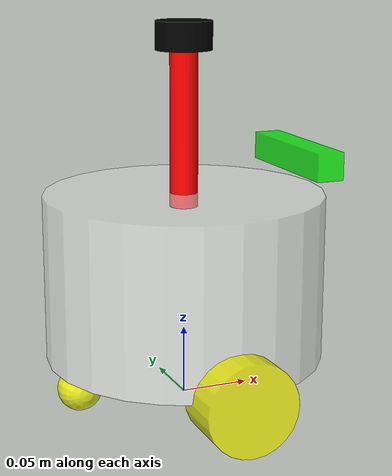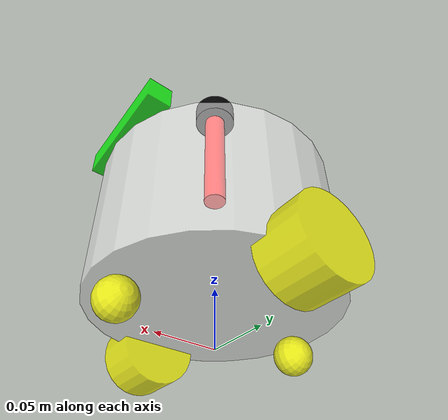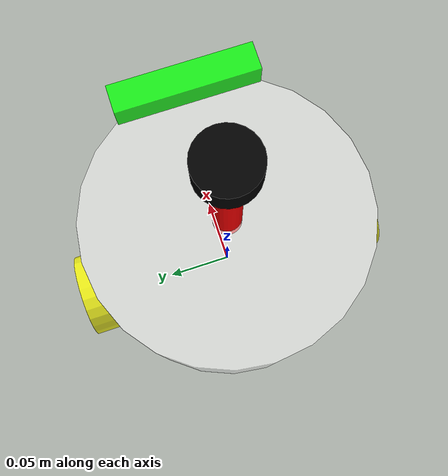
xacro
<?xml version="1.0"?>
<robot xmlns:xacro="http://www.ros.org/wiki/xacro" name="fishbot">
<xacro:include filename="$(find fishbot_description)/urdf/fishbot/base.urdf.xacro" />
<!--传感器部分-->
<xacro:include filename="$(find fishbot_description)/urdf/fishbot/sensor/camera.urdf.xacro" />
<xacro:include filename="$(find fishbot_description)/urdf/fishbot/sensor/imu.urdf.xacro" />
<xacro:include filename="$(find fishbot_description)/urdf/fishbot/sensor/laser.urdf.xacro" />

<!--执行器部分-->
<xacro:include filename="$(find fishbot_description)/urdf/fishbot/actuator/wheel.urdf.xacro" />
<xacro:include filename="$(find fishbot_description)/urdf/fishbot/actuator/caster.urdf.xacro" />

<!--插件-->
<xacro:include filename="$(find fishbot_description)/urdf/fishbot/plugins/gazebo_control_plugin.xacro" />
<xacro:include filename="$(find fishbot_description)/urdf/fishbot/plugins/gazebo_sensor_plugin.xacro" />
<xacro:include filename="$(find fishbot_description)/urdf/fishbot/fishbot.ros2_control.xacro" />

<xacro:base_xacro length="0.12" radius="0.1" />
<xacro:imu_xacro xyz="0 0 0.02" />       <!-- IMU 在中心顶部 -->
<xacro:camera_xacro xyz="0.09 0 0.08" /> <!-- 相机在前部 -->
<xacro:laser_xacro xyz="0 0 0.11" />

<xacro:wheel_xacro wheel_name="left_wheel" xyz="0 0.1 -0.06" />
<xacro:wheel_xacro wheel_name="right_wheel" xyz="0 -0.1 -0.06" />

<xacro:caster_xacro caster_name="front_caster" xyz="0.08 0.0 -0.076" />
<xacro:caster_xacro caster_name="back_caster" xyz="-0.08 0.0 -0.076" />

<!--xacro:gazebo_control_plugin/-->
<xacro:gazebo_sensor_plugin/>
<xacro:fishbot_ros2_control/>
</robot>

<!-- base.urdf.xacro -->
<robot xmlns:xacro="http://www.ros.org/wiki/xacro" name="fishbot">
    <xacro:include filename="$(find fishbot_description)/urdf/fishbot/common_inertial.xacro" />
    <xacro:macro name="base_xacro" params="length radius">
        <link name="base_footprint" />
        <!--机器人身体部分-->
        <link name="base_link">
            <!--部件外观描述-->
            <visual>
                <!-- 沿自己几何中心的旋转量与偏移量-->
                <origin rpy="0 0 0" xyz="0 0 0"/>
                <!-- 描述部件外观的几何体-->
                <geometry>
                    <!-- 圆柱-->
                    <cylinder length="${length}" radius="${radius}" />
                </geometry>
                <material name="white">
                    <color rgba="1 1 1 0.5"/>
                </material>
            </visual>
            <collision>
                <origin rpy="0 0 0" xyz="0 0 0"/>
                <geometry>
                    <cylinder length="${length}" radius="${radius}" />
                </geometry>
                <material name="white">
                    <color rgba="1 1 1 0.5"/>
                </material>
            </collision>
            <xacro:cylinder_inertia m="1.0" r="${radius}" h="${length}" />
        </link>
        <joint name="base_joint" type="fixed">
            <parent link="base_footprint" />
            <child link="base_link" />
            <origin rpy="0 0 0" xyz="0 0 ${length/2.0+0.032-0.001}" />
        </joint>
    </xacro:macro>
</robot>

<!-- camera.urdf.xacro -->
<robot xmlns:xacro="http://www.ros.org/wiki/xacro" name="fishbot">
    <xacro:include filename="$(find fishbot_description)/urdf/fishbot/common_inertial.xacro" />
    <xacro:macro name="camera_xacro" params="xyz">
        <link name="camera_link">
            <visual>
                <origin rpy="0 0 0" xyz="0 0 0"/>
                <geometry>
                    <box size="0.02 0.10 0.02"/>
                </geometry>
                <material name="black">
                    <color rgba="0 1.0 0 0.8"/>
                </material>
            </visual>
            <collision>
                <origin rpy="0 0 0" xyz="0 0 0"/>
                <geometry>
                    <box size="0.02 0.10 0.02"/>
                </geometry>
                <material name="black">
                    <material name="black">
                    <color rgba="0 1.0 0 0.8"/>
                </material>
                </material>
            </collision>
            <xacro:box_inertia m="0.1" w="0.02" h="0.10" d="0.02" />
        </link>
        <link name="camera_optical_link">

        </link>
        <!--机器人关节的关节，用于组合,深度相机的前方是Z轴-->
        <joint name="camera_joint" type="fixed">
            <!-- 父部件-->
            <parent link="base_link"/>
            <!-- 子部件-->
            <child link="camera_link"/>
            <!-- 子部件相对于父部件的旋转量与偏移量-->
            <origin xyz="${xyz}" rpy="0 0 0"/>
        </joint>
        <!--使得深度相机的Z朝前方-->
        <joint name="camera_optical_joint" type="fixed">
            <!-- 父部件-->
            <parent link="camera_link"/>
            <!-- 子部件-->
            <child link="camera_optical_link"/>
            <!-- 子部件相对于父部件的旋转量与偏移量-->
            <origin xyz="0 0 0" rpy="${-pi/2} 0 ${-pi/2}"/>
        </joint>
    </xacro:macro>
</robot>

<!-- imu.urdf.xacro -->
<robot xmlns:xacro="http://www.ros.org/wiki/xacro" name="fishbot">
    <xacro:include filename="$(find fishbot_description)/urdf/fishbot/common_inertial.xacro" />
    <xacro:macro name="imu_xacro" params="xyz">
        <!--机器人的imu部分-->
        <link name="imu_link">
            <visual>
                <origin rpy="0 0 0" xyz="0 0 0"/>
                <geometry>
                    <box size="0.02 0.02 0.02"/>
                </geometry>
                <material name="black">
                    <color rgba="0 0 0 0.8"/>
                </material>
            </visual>
            <collision>
                <origin rpy="0 0 0" xyz="0 0 0"/>
                <geometry>
                    <box size="0.02 0.02 0.02"/>
                </geometry>
                <material name="black">
                    <color rgba="0 0 0 0.8"/>
                </material>
            </collision>
            <xacro:box_inertia m="0.05" w="0.02" h="0.02" d="0.02" />
        </link>
        <!--机器人关节的关节，用于组合-->
        <joint name="imu_joint" type="fixed">
            <!-- 父部件-->
            <parent link="base_link"/>
            <!-- 子部件-->
            <child link="imu_link"/>
            <!-- 子部件相对于父部件的旋转量与偏移量-->
            <origin xyz="${xyz}"/>
        </joint>
    </xacro:macro>
</robot>

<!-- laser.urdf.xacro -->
<robot xmlns:xacro="http://www.ros.org/wiki/xacro" name="fishbot">
    <xacro:include filename="$(find fishbot_description)/urdf/fishbot/common_inertial.xacro" />
    <xacro:macro name="laser_xacro" params="xyz">
        <!--雷达支撑杆-->
        <link name="laser_cylinder_link">
            <visual>
                <origin rpy="0 0 0" xyz="0 0 0"/>
                <geometry>
                    <cylinder radius="0.01" length="0.12" />
                </geometry>
                <material name="black">
                    <color rgba="1.0 0 0 1.0"/>
                </material>
            </visual>
            <xacro:cylinder_inertia m="0.05" r="0.01" h="0.10" />
        </link>

        <!--雷达-->
        <link name="laser_link">
            <visual>
                <origin rpy="0 0 0" xyz="0 0 0"/>
                <geometry>
                    <!-- 雷达头：半径2cm, 厚度2cm -->
                    <cylinder radius="0.02" length="0.02" />
                </geometry>
                <material name="black">
                    <color rgba="0 0 0 1.0"/>
                </material>
            </visual>
            <collision>
                <origin rpy="0 0 0" xyz="0 0 0"/>
                <geometry>
                    <!-- 雷达头：半径2cm, 厚度2cm -->
                    <cylinder radius="0.02" length="0.02" />
                </geometry>
                <material name="black">
                    <material name="black">
                    <color rgba="0 1.0 0 0.8"/>
                </material>
                </material>
            </collision>
            <xacro:cylinder_inertia m="0.1" r="0.02" h="0.02" />
        </link>

        <!--雷达固定到雷达支撑杆-->
        <joint name="laser_joint" type="fixed">
            <parent link="laser_cylinder_link"/>
            <child link="laser_link"/>
            <!-- 修正：将雷达头放在支撑杆的顶部 -->
            <!-- 支撑杆长0.1，半长0.05。放在0.06处刚好在顶面上方一点 -->
            <origin xyz="0.0 0.0 0.06" rpy="0 0 0"/>
        </joint>

        <!--雷达支撑杆固定到base_link-->
        <joint name="laser_cylinder_joint" type="fixed">
            <parent link="base_link"/>
            <child link="laser_cylinder_link"/>
            <!-- 这里的 xyz 是支撑杆中心的位置 -->
            <origin xyz="${xyz}" rpy="0 0 0"/>
        </joint>
        <gazebo reference="laser_cylinder_link">
            <material>Gazebo/Black</material>
        </gazebo>
        <gazebo reference="laser_link">
            <material>Gazebo/Black</material>
        </gazebo>
    </xacro:macro>
</robot>

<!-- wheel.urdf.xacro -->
<robot xmlns:xacro="http://www.ros.org/wiki/xacro" name="fishbot">
    <xacro:macro name="wheel_xacro" params="wheel_name xyz">
        <link name="${wheel_name}_wheel_link">
            <visual>
                <origin rpy="1.57079 0 0" xyz="0 0 0"/>
                <geometry>
                    <cylinder radius="0.0325" length="0.04" />
                </geometry>
                <material name="yellow">
                    <color rgba="1.0 1.0 0.0 0.8"/>
                </material>
            </visual>
            <collision>
                <origin rpy="1.57079 0 0" xyz="0 0 0"/>
                <geometry>
                    <cylinder radius="0.0325" length="0.04" />
                </geometry>
                <material name="yellow">
                    <color rgba="1.0 1.0 0.0 0.8"/>
                </material>
            </collision>
            <xacro:cylinder_inertia m="0.05" r="0.0325" h="0.04"/>
        </link>

        <joint name="${wheel_name}_joint" type="continuous">
            <parent link="base_link"/>
            <child link="${wheel_name}_wheel_link"/>
            <origin xyz="${xyz}"/>
            <!-- 绕旋转完成后的轴转动 -->
            <axis xyz="0 1 0"/>
        </joint>
        <gazebo reference="${wheel_name}_wheel_link">
            <!--切向摩擦系数-->
            <mu1 value="20.0"/>
            <!--法向摩擦系数-->
            <mu2 value="20.0"/>
            <!-- 接触刚度系数 -->
            <kp value="1000000000.0"/>
            <!-- 阻尼系数 -->
            <kd value="1.0"/>
        </gazebo>
    </xacro:macro>
</robot>

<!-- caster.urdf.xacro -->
<robot xmlns:xacro="http://www.ros.org/wiki/xacro" name="fishbot">
    <xacro:include filename="$(find fishbot_description)/urdf/fishbot/common_inertial.xacro" />
    <xacro:macro name="caster_xacro" params="caster_name xyz">
        <link name="${caster_name}_caster_link">
            <visual>
                <origin rpy="1.57079 0 0" xyz="0 0 0"/>
                <geometry>
                    <sphere radius="0.016" rpy="0 0 0"/>
                </geometry>
                <material name="yellow">
                    <color rgba="1.0 1.0 0.0 0.8"/>
                </material>
            </visual>
            <collision>
                <origin rpy="1.57079 0 0" xyz="0 0 0"/>
                <geometry>
                    <sphere radius="0.016" rpy="0 0 0"/>
                </geometry>
                <material name="yellow">
                    <color rgba="1.0 1.0 0.0 0.8"/>
                </material>
            </collision>
            <xacro:sphere_inertia m="0.05" r="0.016" />
        </link>

        <joint name="${caster_name}_caster_joint" type="fixed">
            <parent link="base_link"/>
            <child link="${caster_name}_caster_link"/>
            <origin xyz="${xyz}"/>
            <!-- 绕旋转完成后的轴转动 -->
            <axis xyz="0 1 0"/>
        </joint>
        <gazebo reference="${caster_name}_caster_link">
            <!--切向摩擦系数-->
            <mu1 value="0.0"/>
            <!--法向摩擦系数-->
            <mu2 value="0.0"/>
            <!-- 接触刚度系数 -->
            <kp value="1000000000.0"/>
            <!-- 阻尼系数 -->
            <kd value="1.0"/>
        </gazebo>
    </xacro:macro>
</robot>
